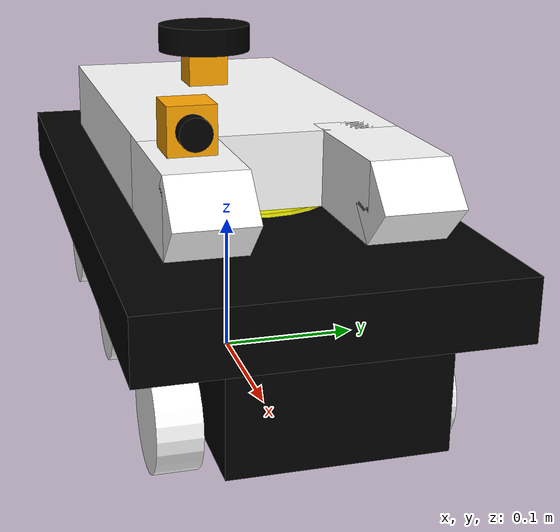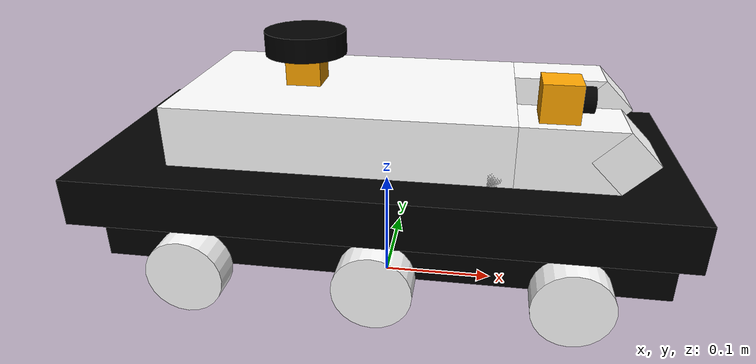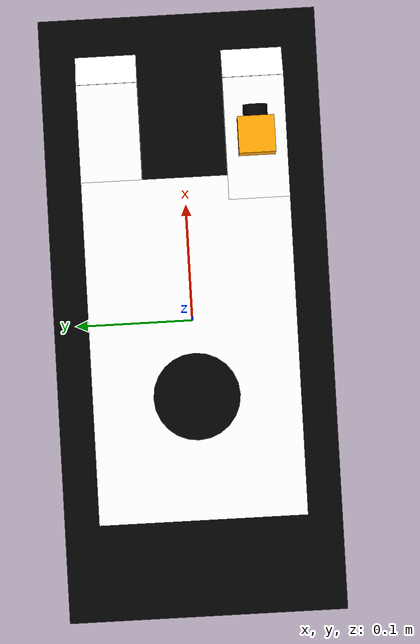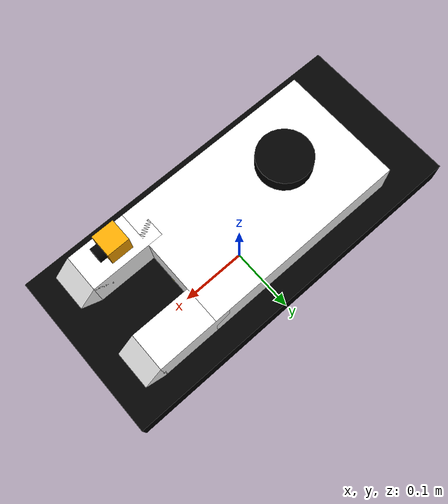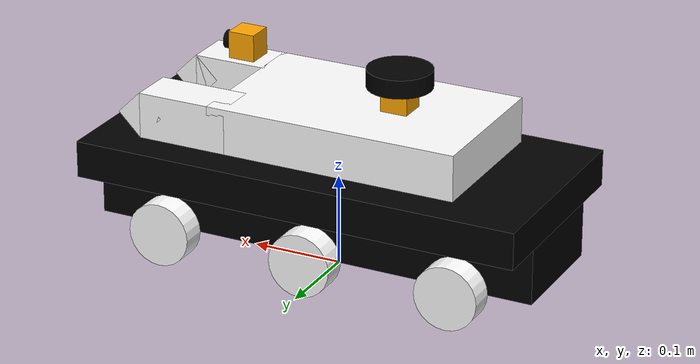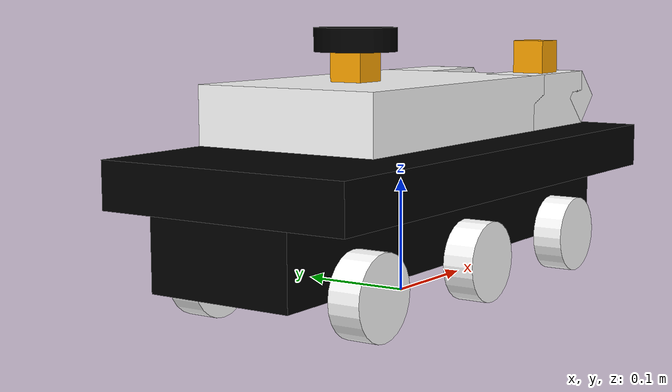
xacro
<?xml version="1.0"?>
<robot xmlns:xacro="http://www.ros.org/wiki/xacro" name="leo">

  <xacro:arg name="use_ros2_control" default="true" />
  <xacro:arg name="sim_mode" default="false" />

  <xacro:include filename="material.xacro" />

  <xacro:include filename="chassi.xacro" />
  <xacro:include filename="joints.xacro" />
  <xacro:include filename="turret.xacro" />

  <xacro:if value="$(arg use_ros2_control)">
    <xacro:include filename="ros2_control.xacro" />
  </xacro:if>

  <xacro:unless value="$(arg use_ros2_control)">
    <xacro:include filename="gazebo.xacro" />
  </xacro:unless>

  <xacro:include filename="lidar.xacro" />
  <xacro:include filename="camera.xacro" />

</robot>

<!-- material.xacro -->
<robot xmlns:xacro="http://www.ros.org/wiki/xacro" >

    <material name="red">
        <color rgba="1 0 0 1"/>
    </material>

    <material name="green">
        <color rgba="0 1 0 1"/>
    </material>

    <material name="blue">
        <color rgba="0 0 1 1"/>
    </material>

    <material name="white">
        <color rgba="1 1 1 1"/>
    </material>

    <material name="black">
        <color rgba="0 0 0 1"/>
    </material>

    <material name="orange">
        <color rgba="1 0.65 0 1"/>
    </material>

    <material name="yellow">
        <color rgba="1 1 0 1"/>
    </material>

    <xacro:macro name="box_inertia" params="m l w h xyz rpy">
        <inertial>
            <origin xyz="${xyz}" rpy="${rpy}" />
            <mass value="${m}" />
            <inertia ixx="${(m/12) * (h*h + l*l)}" ixy="0" ixz="0"
                     iyy="${(m/12) * (w*w + l*l)}" iyz="0"
                     izz="${(m/12) * (w*w + h*h)}" />
        </inertial>
    </xacro:macro>

    <xacro:macro name="cylinder_inertia" params="m r h xyz rpy">
        <inertial>
            <origin xyz="${xyz}" rpy="${rpy}" />
            <mass value="${m}" />
            <inertia ixx="${(m/12) * (3*r*r + h*h)}" ixy="0" ixz="0"
                     iyy="${(m/12) * (3*r*r + h*h)}" iyz="0"
                     izz="${(m/2) * (r*r)}" />
        </inertial>
    </xacro:macro>

    <xacro:macro name="sphere_inertia" params="m r xyz rpy">
        <inertial>
            <origin xyz="${xyz}" rpy="${rpy}" />
            <mass value="${m}" />
            <inertia ixx="${(2/5) * m * r * r}" ixy="0" ixz="0"
                     iyy="${(2/5) * m * r * r}" iyz="0"
                     izz="${(2/5) * m * r * r}" />
        </inertial>
    </xacro:macro>

</robot>

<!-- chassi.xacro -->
<robot xmlns:xacro="http://www.ros.org/wiki/xacro">

    <xacro:property name="chassi_length" value="0.5"/>
    <xacro:property name="chassi_width" value="0.13"/>
    <xacro:property name="chassi_height" value="0.06"/>

    <xacro:property name="chassi_top_length" value="0.5"/>
    <xacro:property name="chassi_top_width" value="0.23"/>
    <xacro:property name="chassi_top_height" value="0.04"/>

    <xacro:property name="wheel_radius" value="0.035"/>
    <xacro:property name="wheel_length" value="0.028"/>

    <!-- Links-->
    <link name="base_footprint"/>

    <!-- Chassis Aufbau-->

    <link name="chassis">
        <visual>
            <origin xyz="0.0 0.0 ${chassi_height/2}" rpy="0.0 0.0 0.0"/>
            <geometry>
                <box size="${chassi_length} ${chassi_width} ${chassi_height}"/>
            </geometry>
            <material name="black"/>
        </visual>
        <collision>
            <origin xyz="0.0 0.0 ${chassi_height/2}" rpy="0.0 0.0 0.0"/>
            <geometry>
                <box size="${chassi_length} ${chassi_width} ${chassi_height}"/>
            </geometry>
        </collision>
        <xacro:box_inertia m="3.0" l="${chassi_length}" w="${chassi_width}" h="${chassi_height}"
                           xyz="0.0 0.0 ${chassi_height/2}" rpy="0 0 0"/>
    </link>
    <gazebo reference="chassis">
        <material>Gazebo/Grass</material>
    </gazebo>

    <link name="chassis_top">
        <visual>
            <origin xyz="0.0 0.0 ${chassi_top_height/2}" rpy="0.0 0.0 0.0"/>
            <geometry>
                <box size="${chassi_top_length} ${chassi_top_width} ${chassi_top_height}"/>
            </geometry>
            <material name="black"/>
        </visual>
        <collision>
            <origin xyz="0.0 0.0 ${chassi_top_height/2}" rpy="0.0 0.0 0.0"/>
            <geometry>
                <box size="${chassi_top_length} ${chassi_top_width} ${chassi_top_height}"/>
            </geometry>
        </collision>
        <xacro:box_inertia m="1.0" l="${chassi_top_length}" w="${chassi_top_width}" h="${chassi_top_height}"
                           xyz="0.0 0.0 ${chassi_top_height/2}" rpy="0 0 0"/>
    </link>
    <gazebo reference="chassis_top">
        <material>Gazebo/Grass</material>
    </gazebo>

    <!-- WHEELS-->

    <xacro:macro name="wheel_link" params="prefix ">
        <link name="${prefix}_wheel">
            <visual>
                <origin xyz="0.0 0.0 0.0" rpy="${pi/2} 0.0 0.0"/>
                <geometry>
                    <cylinder radius="${wheel_radius}" length="${wheel_length}"/>
                </geometry>
                <material name="white"/>
            </visual>
            <collision>
                <origin xyz="0.0 0.0 0.0" rpy="${pi/2} 0.0 0.0"/>
                <geometry>
                    <cylinder radius="${wheel_radius}" length="${wheel_length}"/>
                </geometry>
            </collision>
            <xacro:cylinder_inertia m="0.3" r="${wheel_radius}" h="${wheel_length}"
                           xyz="0 0 0" rpy="${pi/2} 0.0 0.0"/>
        </link>
        <gazebo reference="${prefix}_wheel">
            <material>Gazebo/Grey</material>
            <mu1 value="0.1"/>
            <mu2 value="0.1"/>
        </gazebo>
    </xacro:macro>

    <xacro:wheel_link prefix="right"/>
    <xacro:wheel_link prefix="left"/>

    <xacro:wheel_link prefix="right_f"/>
    <xacro:wheel_link prefix="right_r"/>
    <xacro:wheel_link prefix="left_f"/>
    <xacro:wheel_link prefix="left_r"/>

</robot>

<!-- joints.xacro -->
<robot xmlns:xacro="http://www.ros.org/wiki/xacro">

        <!-- Joints Fixed -->

        <joint name="base_link" type="fixed">
            <parent link="base_footprint"/>
            <child link="chassis"/>
            <origin xyz="0.0 0.0 ${wheel_radius}" rpy="0.0 0.0 0.0"/>
        </joint>

        <joint name="chassieAufbau" type="fixed">
            <parent link="chassis"/>
            <child link="chassis_top"/>
            <origin xyz="0.0 0.0 ${chassi_height}" rpy="0.0 0.0 0.0"/>
        </joint>

        <joint name="joint_rf" type="fixed">
            <parent link="chassis"/>
            <child link="right_f_wheel"/>
            <origin xyz="${chassi_length/3} -${chassi_width/2 + wheel_length/2} 0" rpy="0 0 0"/>
        </joint>
        <joint name="joint_rr" type="fixed">
            <parent link="chassis"/>
            <child link="right_r_wheel"/>
            <origin xyz="-${chassi_length/3} -${chassi_width/2 + wheel_length/2} 0" rpy="0 0 0"/>
        </joint>

        <joint name="joint_lf" type="fixed">
            <parent link="chassis"/>
            <child link="left_f_wheel"/>
            <origin xyz="${chassi_length/3} ${chassi_width/2 + wheel_length/2} 0" rpy="0 0 0"/>
        </joint>
        <joint name="joint_lr" type="fixed">
            <parent link="chassis"/>
            <child link="left_r_wheel"/>
            <origin xyz="-${chassi_length/3} ${chassi_width/2 + wheel_length/2} 0" rpy="0 0 0"/>
        </joint>

        <!-- Joints Moving-->

        <joint name="joint_1" type="continuous">
            <parent link="chassis"/>
            <child link="right_wheel"/>
            <axis xyz="0 1 0"/>
            <origin xyz="0 -${chassi_width/2 + wheel_length/2} 0" rpy="0 0 0"/>
        </joint>

        <joint name="joint_2" type="continuous">
            <parent link="chassis"/>
            <child link="left_wheel"/>
            <axis xyz="0 1 0"/>
            <origin xyz="0 ${chassi_width/2+ wheel_length/2} 0" rpy="0 0 0"/>
        </joint>

</robot>

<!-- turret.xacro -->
<robot xmlns:xacro="http://www.ros.org/wiki/xacro">

    <!-- Turm Auflage-->

    <xacro:macro name="turret_coil" params="prefix">
        <link name="${prefix}_coil">
            <visual>
                <geometry>
                    <cylinder radius="0.06" length="0.005" />
                </geometry>
                <material name="yellow" />
            </visual>
            <collision>
                <geometry>
                    <cylinder radius="0.06" length="0.005" />
                </geometry>
            </collision>
            <xacro:cylinder_inertia m="0.1" r="0.06" h="0.005"
                           xyz="0 0 0" rpy="0 0 0"/>
        </link>
    </xacro:macro>

    <xacro:turret_coil prefix="top" />
    <xacro:turret_coil prefix="down" />

    <!-- Turm -->

    <link name="turm_top_">
        <visual>
            <geometry>
                <box size="0.28 0.17 0.05" />
            </geometry>
            <material name="white" />
        </visual>
        <collision>
            <geometry>
                <box size="0.28 0.17 0.05" />
            </geometry>
            <material name="white" />
        </collision>
        <xacro:box_inertia m="0.5" l="0.28" w="0.17" h="0.05"
                           xyz="0 0 0" rpy="0 0 0"/>

    </link>
    <gazebo reference="turm_top_">
        <material>Gazebo/Grass</material>
    </gazebo>

    <xacro:macro name="turm_seite" params="prefix">
        <link name="turm_top_${prefix}">
            <visual>
                <geometry>
                    <box size="0.1 0.05 0.05" />
                </geometry>
                <material name="white" />
            </visual>
            <collision>
                <geometry>
                    <box size="0.1 0.05 0.05" />
                </geometry>
            </collision>
            <xacro:box_inertia m="0.2" l="0.1" w="0.05" h="0.05"
                           xyz="0 0 0" rpy="0 0 0"/>
        </link>
        <gazebo reference="turm_top_${prefix}">
            <material>Gazebo/Grass</material>
        </gazebo>

        <link name="turm_deko_${prefix}">
            <visual>
                <origin xyz="0.0 0.0 0.0" rpy="0.0 ${pi/4} 0.0" />
                <geometry>
                    <box size="0.0355 0.05 0.0355" />
                </geometry>
                <material name="white" />
            </visual>
            <collision>
                <origin xyz="0.0 0.0 0.0" rpy="0.0 ${pi/4} 0.0" />
                <geometry>
                    <box size="0.0355 0.05 0.0355" />
                </geometry>
            </collision>
            <xacro:box_inertia m="0.1" l="0.0355" w="0.05" h="0.0355"
                               xyz="0 0 0" rpy="0.0 ${pi/4} 0.0"/>
        </link>
        <gazebo reference="turm_deko_${prefix}">
            <material>Gazebo/Grass</material>
        </gazebo>

        <joint name="gun_deko_${prefix}" type="fixed">
            <parent link="turm_top_${prefix}" />
            <child link="turm_deko_${prefix}" />
            <origin xyz="0.05 0.0 0.0" rpy="0.0 0.0 0.0" />
        </joint>
    </xacro:macro>

    <xacro:turm_seite prefix="r" />
    <xacro:turm_seite prefix="l" />

    <!-- JOINTS Turret -->

    <joint name="fixirung" type="fixed">
        <origin xyz="0.05 0.0 0.04" rpy="0.0 0.0 0.0" />
        <parent link="chassis_top" />
        <child link="down_coil" />
    </joint>

    <!-- change to moving if - joint für den turm -->

    <joint name="turret_coil_joint" type="fixed">
        <origin xyz="0.0 0.0 0.005" rpy="0.0 0.0 0.0" />
        <parent link="down_coil" />
        <child link="top_coil" />
    </joint>

    <!-- Turm_joints-->

    <joint name="turm_top_joint" type="fixed">
        <parent link="top_coil" />
        <child link="turm_top_" />
        <origin xyz="-0.08 0.0 0.025" />
    </joint>

    <joint name="turm_top_left" type="fixed">
        <parent link="turm_top_" />
        <child link="turm_top_l" />
        <origin xyz="0.17 0.06 0.0" />
    </joint>

    <joint name="turm_top_right" type="fixed">
        <parent link="turm_top_" />
        <child link="turm_top_r" />
        <origin xyz="0.17 -0.06 0.0" />
    </joint>

</robot>

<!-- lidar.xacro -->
<robot xmlns:xacro="http://www.ros.org/wiki/xacro">

    <!-- LIDAR -->
    <link name="lidar_mount">
        <visual>
            <geometry>
                <box size="0.03 0.03 0.03" />
            </geometry>
            <material name="orange" />
        </visual>
        <collision>
            <geometry>
                <box size="0.03 0.03 0.03" />
            </geometry>
        </collision>
        <xacro:box_inertia m="0.02" l="0.03" w="0.03" h="0.03"
            xyz="0 0 0" rpy="0 0 0" />
    </link>
    <gazebo reference="lidar_mount">
        <material>Gazebo/Grass</material>
    </gazebo>

    <link name="laser_frame">
        <visual>
            <origin xyz="0.0 0.0 0.0" rpy="0.0 0.0 ${pi/2}" />
            <geometry>
                <cylinder radius="0.035" length="0.02" />
            </geometry>
            <material name="black" />
        </visual>
        <collision>
            <origin xyz="0.0 0.0 0.0" rpy="0.0 0.0 ${pi/2}" />
            <geometry>
                <cylinder radius="0.035" length="0.02" />
            </geometry>
        </collision>
        <xacro:cylinder_inertia m="0.01" r="0.035" h="0.02"
            xyz="0 0 0" rpy="0 0 ${pi/2}" />
    </link>
    <gazebo reference="laser_frame">
        <material>Gazebo/Black</material>
        <sensor name="laser" type="ray">
            <pose> 0 0 0 0 0 0 </pose>
            <visualize>true</visualize>
            <update_rate>10</update_rate>
            <ray>
                <scan>
                    <horizontal>
                        <samples>360</samples>
                        <resolution>1</resolution>
                        <min_angle>0.00</min_angle>
                        <max_angle>3.14</max_angle>
                    </horizontal>
                </scan>
                <range>
                    <min>0.3</min>
                    <max>6</max>
                </range>
            </ray>
            <plugin name="laser_controller" filename="libgazebo_ros_ray_sensor.so">
                <ros>
                    <argument>--ros-args --remap ~/out:=scan</argument> <!-- - -ros-args - -remap
                    ~/out:=scan -->
                </ros>
                <output_type>sensor_msgs/LaserScan</output_type>
                <frame_name>laser_frame</frame_name>
            </plugin>
        </sensor>
    </gazebo>

    <joint name="laser_joint" type="fixed">
        <parent link="lidar_mount" />
        <child link="laser_frame" />
        <origin xyz="0.0 0.0 0.02" rpy="0.0 0.0 ${-pi/2}" />
    </joint>

    <joint name="lidar_mount_joint" type="fixed">
        <origin xyz="-0.04 0.0 0.04" rpy="0 0 0" />
        <parent link="turm_top_" />
        <child link="lidar_mount" />
    </joint>

</robot>

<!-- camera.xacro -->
<robot xmlns:xacro="http://www.ros.org/wiki/xacro" >

<!-- CAMERA and Cam Linse-->

    <link name="cam">
        <visual>
            <geometry>
                <box size="0.03 0.03 0.03"/>
            </geometry>
            <material name="orange"/>
        </visual>
        <collision>
            <geometry>
                <box size="0.03 0.03 0.03"/>
            </geometry>
        </collision>
        <xacro:box_inertia m="0.02" l="0.03" w="0.03" h="0.03"
                           xyz="0 0 0" rpy="0 0 0"/>
    </link>

    <link name="cam_linse">
        <visual>
            <geometry>
                <cylinder radius="0.01" length="0.02"/>
            </geometry>
            <material name="black"/>
        </visual>
        <collision>
            <geometry>
                <cylinder radius="0.01" length="0.02"/>
            </geometry>
        </collision>
        <xacro:cylinder_inertia m="0.005" r="0.01" h="0.02"
                           xyz="0 0 0" rpy="0 0 0"/>
    </link>

    <link name="leo_optic"></link>

    <joint name="cam_body_joint" type="fixed">
        <origin xyz="0.0 0.0 0.04" rpy="0.0 0.0 0.0"/>
        <parent link="turm_top_r"/>
        <child link="cam"/>
    </joint>

    <joint name="linse_to_cam" type="fixed">
        <origin xyz="0.015 0.0 0.0" rpy="0 ${pi/2} 0.0"/>
        <parent link="cam"/>
        <child link="cam_linse"/>
    </joint>

    <joint name="leo_optic_joint" type="fixed">
        <origin xyz="0 0.0 0.0" rpy="${-pi/2} 0.0 ${-pi/2}"/>
        <parent link="cam"/>
        <child link="leo_optic"/>
    </joint>

    <!-- GAZEBO PLUGIN -->

    <gazebo reference="cam_linse">
        <material>Gazebo/Black</material>
    </gazebo>

    <gazebo reference="cam">
        <material>Gazebo/Orange</material>
    </gazebo>

</robot>
